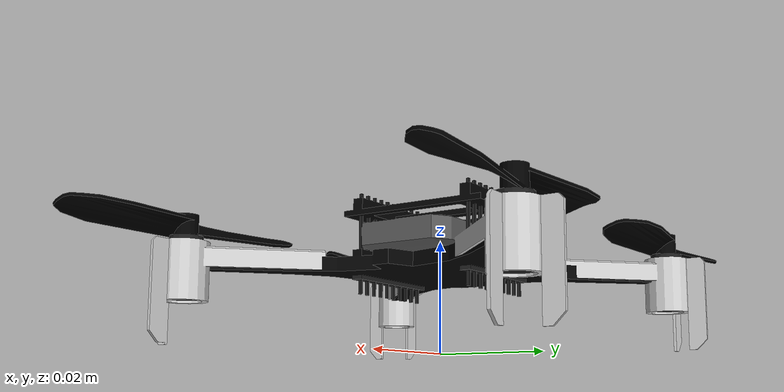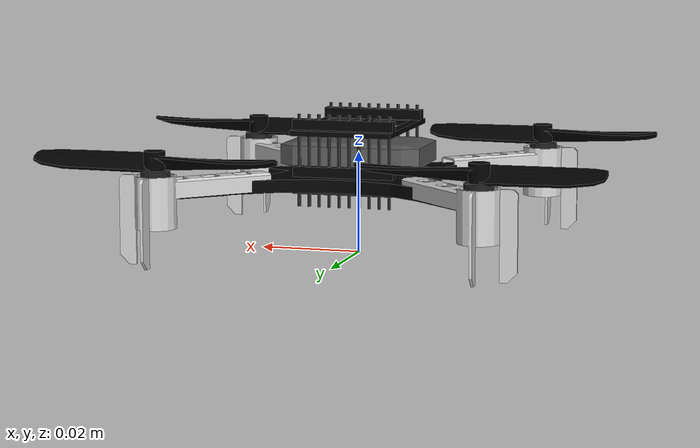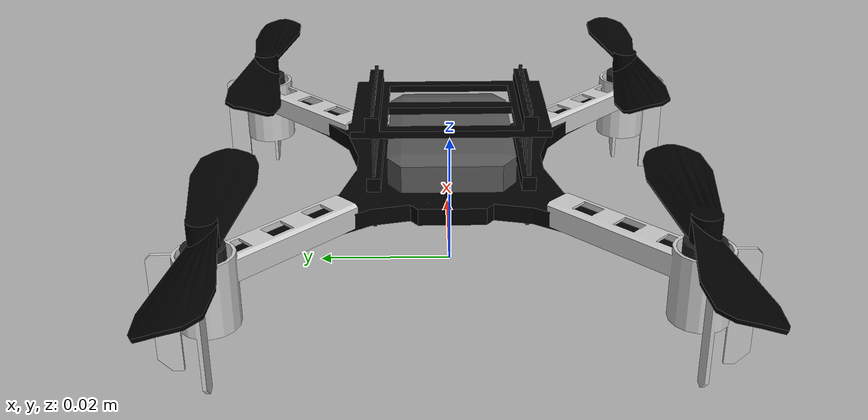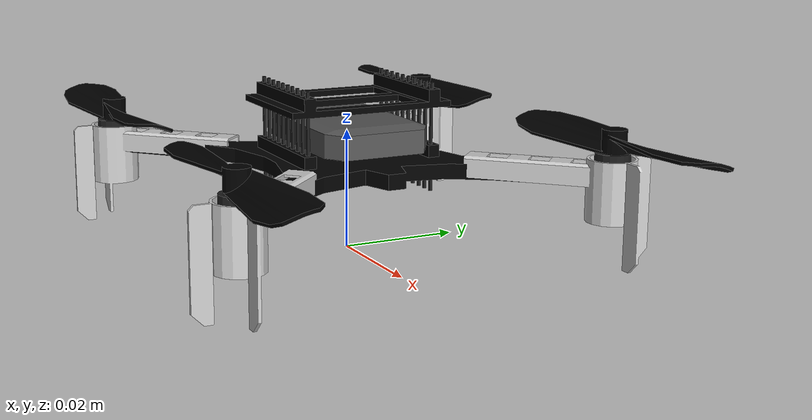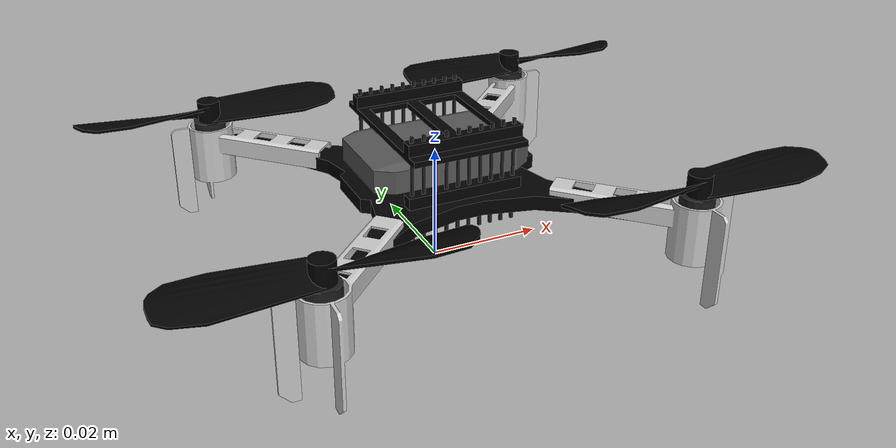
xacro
<?xml version="1.0"?>
<robot xmlns:xacro="http://www.ros.org/wiki/xacro" name="crazyflie">

  <!-- Base footprint link (dummy root) -->
  <link name="base_footprint"/>

  <!-- Crazyflie body macro -->
  <xacro:macro name="base_link" params="mesh_package mass box_size_x box_size_y box_size_z">
    <link name="base_link">
      <!-- Inertial properties -->
      <inertial>
        <origin xyz="0 0 0.017425" rpy="0 0 0"/>
        <mass value="${mass}"/>
        <inertia
          ixx="1.6571710e-05" iyy="1.6655602e-05" izz="2.9261652e-05"
          ixy="8.30806e-07" ixz="7.18277e-07" iyz="1.800197e-06"/>
      </inertial>

      <!-- Collision geometry -->
      <collision name="body_collision">
        <origin xyz="0 0 0.017425" rpy="0 0 0"/>
        <geometry>
          <box size="${box_size_x} ${box_size_y} ${box_size_z}"/>
        </geometry>
      </collision>

      <!-- Visual geometry -->
      <visual name="body_visual">
        <origin xyz="0 0 0.017425" rpy="0 0 0"/>
        <geometry>
          <mesh filename="file://$(find crazyflie_description)/meshes/collada_files/cf2_assembly.dae"/>
        </geometry>
      </visual>
    </link>
  </xacro:macro>

  <!-- Propeller macro -->
  <xacro:macro name="crazyflie_prop" params="prop_name mesh_package mass mesh_file">
    <link name="${prop_name}">
      <inertial>
        <mass value="${mass}"/>
        <inertia ixx="8.33333e-09" iyy="1.08333e-07" izz="1.13333e-07" ixy="0.0" ixz="0.0" iyz="0.0"/>
      </inertial>

      <visual>
        <origin xyz="0 0 0" rpy="0 0 0"/>
        <geometry>
          <mesh filename="file://$(find crazyflie_description)/meshes/collada_files/${mesh_file}"/>
        </geometry>
      </visual>

      <collision>
        <origin xyz="0 0 0" rpy="0 0 0"/>
        <geometry>
          <mesh filename="file://$(find crazyflie_description)/meshes/collada_files/${mesh_file}"/>
        </geometry>
      </collision>
    </link>
  </xacro:macro>

  <!-- Motor plugin parameters as xacro properties -->
  <xacro:property name="robot_ns" value="crazyflie"/>
  <xacro:property name="max_rot_velocity" value="2618"/>
  <xacro:property name="motor_constant" value="1.28192e-08"/>
  <xacro:property name="moment_constant" value="0.005964552"/>
  <xacro:property name="rotor_drag_coefficient" value="8.06428e-05"/>
  <xacro:property name="rolling_moment_coefficient" value="0.0000001"/>
  <xacro:property name="rotor_velocity_slowdown_sim" value="20"/>

  <!-- Multicopter Velocity Control Plugin Parameters -->
  <xacro:property name="control_command_topic" value="gazebo/command/twist"/>
  <xacro:property name="control_enable_topic" value="enable"/>
  <xacro:property name="control_velocity_gain" value="1.25 1.25 0.2425"/>
  <xacro:property name="control_attitude_gain" value="0.02 0.02 0.02"/>
  <xacro:property name="control_angular_rate_gain" value="0.005 0.005 0.005"/>
  <xacro:property name="control_force_constant" value="1.28192e-08"/>
  <xacro:property name="control_moment_constant" value="0.005964552"/>

  <!-- Instantiate body -->
  <xacro:base_link
    mesh_package="crazyflie_description"
    mass="0.025"
    box_size_x="0.10"
    box_size_y="0.10"
    box_size_z="0.03485"/>

  <!-- Instantiate propellers -->
  <xacro:crazyflie_prop prop_name="m1_prop" mesh_package="crazyflie_description" mass="0.0008" mesh_file="ccw_prop.dae"/>
  <xacro:crazyflie_prop prop_name="m2_prop" mesh_package="crazyflie_description" mass="0.0008" mesh_file="cw_prop.dae"/>
  <xacro:crazyflie_prop prop_name="m3_prop" mesh_package="crazyflie_description" mass="0.0008" mesh_file="ccw_prop.dae"/>
  <xacro:crazyflie_prop prop_name="m4_prop" mesh_package="crazyflie_description" mass="0.0008" mesh_file="cw_prop.dae"/>

  <!-- Fixed joint between base_footprint and body -->
  <joint name="base_to_body" type="fixed">
    <parent link="base_footprint"/>
    <child link="base_link"/>
  </joint>

  <!-- Joints between body and props -->
  <joint name="body_to_m1_prop" type="continuous">
    <parent link="base_link"/>
    <child link="m1_prop"/>
    <origin xyz="0.031 -0.031 0.021" rpy="0 0 0"/>
    <axis xyz="0 0 1"/>
    <limit effort="1.0" velocity="120.0"/>
  </joint>

  <joint name="body_to_m2_prop" type="continuous">
    <parent link="base_link"/>
    <child link="m2_prop"/>
    <origin xyz="-0.031 -0.031 0.021" rpy="0 0 0"/>
    <axis xyz="0 0 1"/>
    <limit effort="1.0" velocity="120.0"/>
  </joint>

  <joint name="body_to_m3_prop" type="continuous">
    <parent link="base_link"/>
    <child link="m3_prop"/>
    <origin xyz="-0.031 0.031 0.021" rpy="0 0 0"/>
    <axis xyz="0 0 1"/>
    <limit effort="1.0" velocity="120.0"/>
  </joint>

  <joint name="body_to_m4_prop" type="continuous">
    <parent link="base_link"/>
    <child link="m4_prop"/>
    <origin xyz="0.031 0.031 0.021" rpy="0 0 0"/>
    <axis xyz="0 0 1"/>
    <limit effort="1.0" velocity="120.0"/>
  </joint>

  <gazebo>
    <plugin
      filename="gz-sim-multicopter-control-system"
      name="gz::sim::systems::MulticopterVelocityControl">
      <robotNamespace>${robot_ns}</robotNamespace>
      <commandSubTopic>${control_command_topic}</commandSubTopic>
      <enableSubTopic>${control_enable_topic}</enableSubTopic>
      <comLinkName>base_footprint</comLinkName>
      <velocityGain>${control_velocity_gain}</velocityGain>
      <attitudeGain>${control_attitude_gain}</attitudeGain>
      <angularRateGain>${control_angular_rate_gain}</angularRateGain>
      <rotorConfiguration>
        <rotor>
          <jointName>body_to_m1_prop</jointName>
          <forceConstant>${control_force_constant}</forceConstant>
          <momentConstant>${control_moment_constant}</momentConstant>
          <direction>1</direction>
        </rotor>
        <rotor>
          <jointName>body_to_m2_prop</jointName>
          <forceConstant>${control_force_constant}</forceConstant>
          <momentConstant>${control_moment_constant}</momentConstant>
          <direction>-1</direction>
        </rotor>
        <rotor>
          <jointName>body_to_m3_prop</jointName>
          <forceConstant>${control_force_constant}</forceConstant>
          <momentConstant>${control_moment_constant}</momentConstant>
          <direction>1</direction>
        </rotor>
        <rotor>
          <jointName>body_to_m4_prop</jointName>
          <forceConstant>${control_force_constant}</forceConstant>
          <momentConstant>${control_moment_constant}</momentConstant>
          <direction>-1</direction>
        </rotor>
      </rotorConfiguration>
    </plugin>
    <plugin filename="gz-sim-multicopter-motor-model-system" name="gz::sim::systems::MulticopterMotorModel">
      <robotNamespace>${robot_ns}</robotNamespace>
      <jointName>body_to_m1_prop</jointName>
      <linkName>m1_prop</linkName>
      <turningDirection>ccw</turningDirection>
      <maxRotVelocity>${max_rot_velocity}</maxRotVelocity>
      <motorConstant>${motor_constant}</motorConstant>
      <momentConstant>${moment_constant}</momentConstant>
      <rotorDragCoefficient>${rotor_drag_coefficient}</rotorDragCoefficient>
      <rollingMomentCoefficient>${rolling_moment_coefficient}</rollingMomentCoefficient>
      <rotorVelocitySlowdownSim>${rotor_velocity_slowdown_sim}</rotorVelocitySlowdownSim>
      <actuator_number>0</actuator_number>
      <motorType>velocity</motorType>
    </plugin>
    <plugin filename="gz-sim-multicopter-motor-model-system" name="gz::sim::systems::MulticopterMotorModel">
      <robotNamespace>${robot_ns}</robotNamespace>
      <jointName>body_to_m2_prop</jointName>
      <linkName>m2_prop</linkName>
      <turningDirection>cw</turningDirection>
      <maxRotVelocity>${max_rot_velocity}</maxRotVelocity>
      <motorConstant>${motor_constant}</motorConstant>
      <momentConstant>${moment_constant}</momentConstant>
      <rotorDragCoefficient>${rotor_drag_coefficient}</rotorDragCoefficient>
      <rollingMomentCoefficient>${rolling_moment_coefficient}</rollingMomentCoefficient>
      <rotorVelocitySlowdownSim>${rotor_velocity_slowdown_sim}</rotorVelocitySlowdownSim>
      <actuator_number>1</actuator_number>
      <motorType>velocity</motorType>
    </plugin>
    <plugin filename="gz-sim-multicopter-motor-model-system" name="gz::sim::systems::MulticopterMotorModel">
      <robotNamespace>${robot_ns}</robotNamespace>
      <jointName>body_to_m3_prop</jointName>
      <linkName>m3_prop</linkName>
      <turningDirection>ccw</turningDirection>
      <maxRotVelocity>${max_rot_velocity}</maxRotVelocity>
      <motorConstant>${motor_constant}</motorConstant>
      <momentConstant>${moment_constant}</momentConstant>
      <rotorDragCoefficient>${rotor_drag_coefficient}</rotorDragCoefficient>
      <rollingMomentCoefficient>${rolling_moment_coefficient}</rollingMomentCoefficient>
      <rotorVelocitySlowdownSim>${rotor_velocity_slowdown_sim}</rotorVelocitySlowdownSim>
      <actuator_number>2</actuator_number>
      <motorType>velocity</motorType>
    </plugin>
    <plugin filename="gz-sim-multicopter-motor-model-system" name="gz::sim::systems::MulticopterMotorModel">
      <robotNamespace>${robot_ns}</robotNamespace>
      <jointName>body_to_m4_prop</jointName>
      <linkName>m4_prop</linkName>
      <turningDirection>cw</turningDirection>
      <maxRotVelocity>${max_rot_velocity}</maxRotVelocity>
      <motorConstant>${motor_constant}</motorConstant>
      <momentConstant>${moment_constant}</momentConstant>
      <rotorDragCoefficient>${rotor_drag_coefficient}</rotorDragCoefficient>
      <rollingMomentCoefficient>${rolling_moment_coefficient}</rollingMomentCoefficient>
      <rotorVelocitySlowdownSim>${rotor_velocity_slowdown_sim}</rotorVelocitySlowdownSim>
      <actuator_number>3</actuator_number>
      <motorType>velocity</motorType>
    </plugin>
  </gazebo>
</robot>
